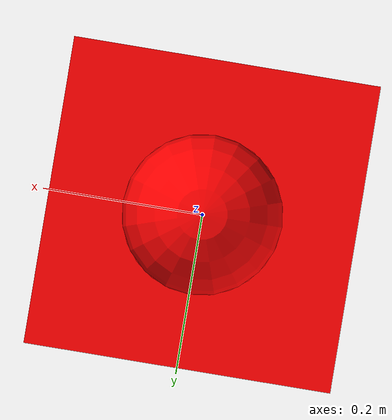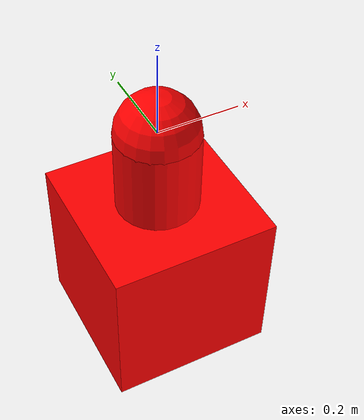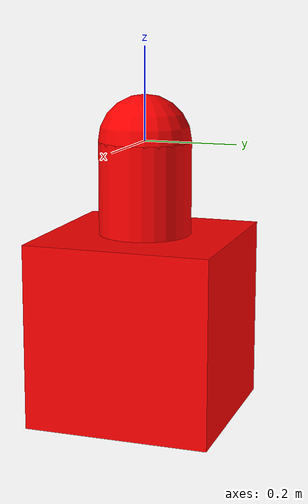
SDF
<?xml version="1.0" encoding="UTF-8"?>
<sdf version='1.9'>
  <model name="payload">
    <enable_wind>true</enable_wind>
    <link name="base_link">
      <pose>0 0 0 0 0 0</pose>
      <collision name="base_link_collision">
        <geometry>
          <sphere>
            <radius>0.1</radius>
          </sphere>
        </geometry>
      </collision>
      <visual name="base_link_visual">
        <geometry>
          <sphere>
            <radius>0.1</radius>
          </sphere>
        </geometry>
        <material>
          <ambient>1 0 0 1</ambient> <!-- red -->
          <diffuse>1 0 0 1</diffuse>
          <specular>1 0 0 1</specular>
        </material>
      </visual>
      <inertial>
        <mass>0.05</mass> <!-- kg -->
        <inertia>
          <ixx>0.05*0.4*0.1*0.1</ixx>
          <iyy>0.05*0.4*0.1*0.1</iyy>
          <izz>0.05*0.4*0.1*0.1</izz>
        </inertia>
      </inertial>
    </link>
    <link name="stick_link">
      <pose>0 0 -0.1 0 0 0</pose>
      <collision name="stick_link_collision">
        <geometry>
          <cylinder>
            <radius>0.1</radius>
            <length>0.2</length>
          </cylinder>
        </geometry>
      </collision>
      <visual name="stick_link_visual">
        <geometry>
          <cylinder>
            <radius>0.1</radius>
            <length>0.2</length>
          </cylinder>
        </geometry>
        <material>
          <ambient>1 0 0 1</ambient> <!-- red -->
          <diffuse>1 0 0 1</diffuse>
          <specular>1 0 0 1</specular>
        </material>
      </visual>
      <inertial>
        <mass>0.05</mass> <!-- kg -->
        <inertia>
          <ixx>0.05/6*(0.4*0.4)</ixx>
          <iyy>0.05/6*(0.4*0.4)</iyy>
          <izz>0.05/6*(0.4*0.4)</izz>
        </inertia>
      </inertial>
    </link>
    <link name="load_link">
      <pose>0 0 -0.4 0 0 0</pose>
      <collision name="load_link_collision">
        <geometry>
          <box>
            <size>0.4 0.4 0.4</size>
          </box>
        </geometry>
      </collision>
      <visual name="load_link_visual">
        <geometry>
          <box>
            <size>0.4 0.4 0.4</size>
          </box>
        </geometry>
        <material>
          <ambient>1 0 0 1</ambient> <!-- red -->
          <diffuse>1 0 0 1</diffuse>
          <specular>1 0 0 1</specular>
        </material>
      </visual>
      <inertial>
        <mass>0.5</mass> <!-- kg -->
        <inertia>
          <ixx>0.5/6*(0.4*0.4)</ixx>
          <iyy>0.5/6*(0.4*0.4)</iyy>
          <izz>0.5/6*(0.4*0.4)</izz>
        </inertia>
      </inertial>
    </link>
    <joint name="stick_joint" type="fixed">
      <parent>base_link</parent>
      <child>stick_link</child>
    </joint>
    <joint name="load_joint" type="fixed">
      <parent>stick_link</parent>
      <child>load_link</child>
    </joint>
  </model>
</sdf>
